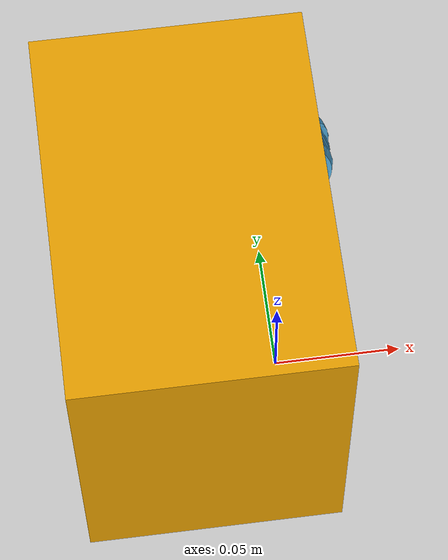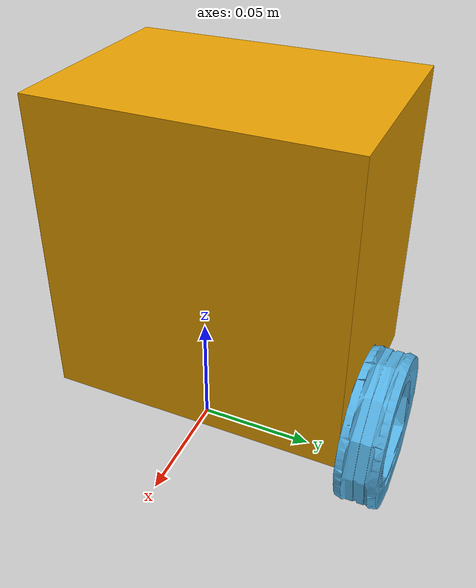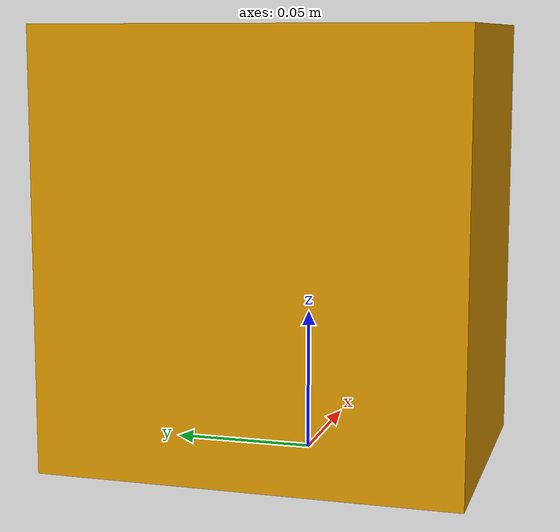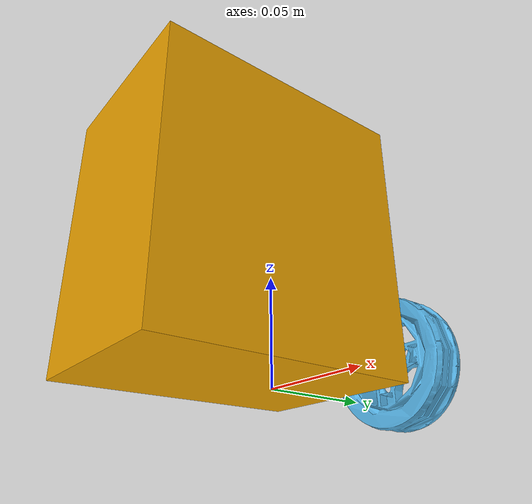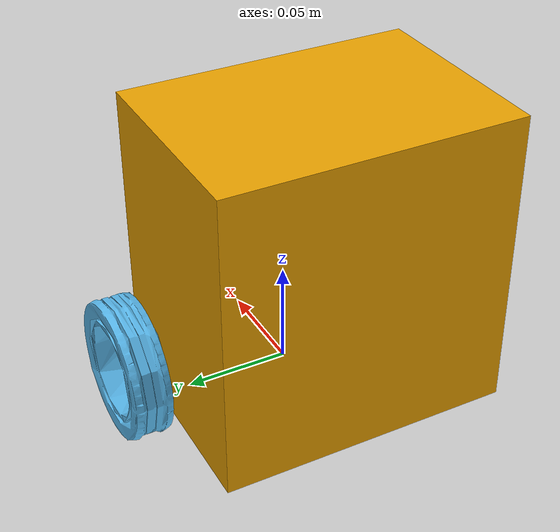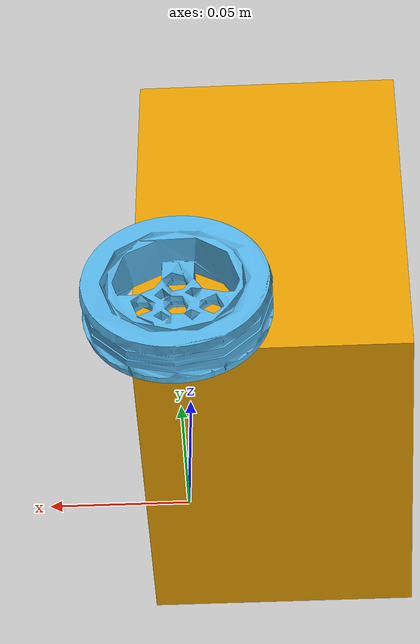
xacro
<?xml version="1.0"?>
<robot name="" xmlns:xacro="http://ros.org/wiki/xacro">

  <link name="base_link">
    <visual>
      <origin xyz="-0.032 0 0.08" rpy="0 0 0"/>
      <geometry>
        <box size="0.097 0.137 0.1425"/>
      </geometry>
    </visual>

    <collision>
      <origin xyz="-0.032 0 0.08" rpy="0 0 0"/>
      <geometry>
        <box size="0.097 0.137 0.1425"/>
      </geometry>
    </collision>

    <inertial>
      <origin xyz="0 0 0" rpy="0 0 0"/>
      <mass value="8.2573504e-01"/>
      <inertia ixx="2.2124416e-03" ixy="-1.2294101e-05" ixz="3.4938785e-05"
               iyy="2.1193702e-03" iyz="-5.0120904e-06"
               izz="2.0064271e-03" />
    </inertial>

  </link>

  <joint name="wheel_left_joint" type="continuous">
    <parent link="base_link"/>
    <child link="wheel_left_link"/>
    <origin xyz="0.0 0.08 0.023" rpy="-1.57 0 0"/>
    <axis xyz="0 0 1"/>
  </joint>

  <link name="wheel_left_link">
    <visual>
      <origin xyz="0 0 0" rpy="1.57 0 0"/>
      <geometry>
        <mesh filename="package://turtlebot3_description/meshes/wheels/left_tire.stl" scale="0.001 0.001 0.001"/>
      </geometry>
      <material name="dark"/>
    </visual>

    <collision>
      <origin xyz="0 0 0" rpy="0 0 0"/>
      <geometry>
        <cylinder length="0.018" radius="0.033"/>
      </geometry>
    </collision>

    <inertial>
      <origin xyz="0 0 0" />
      <mass value="2.8498940e-02" />
      <inertia ixx="1.1175580e-05" ixy="-4.2369783e-11" ixz="-5.9381719e-09"
               iyy="1.1192413e-05" iyz="-1.4400107e-11"
               izz="2.0712558e-05" />
      </inertial>
  </link>

</robot>
